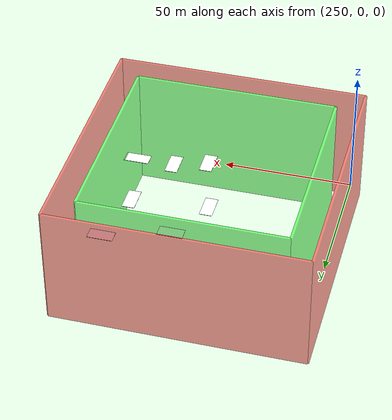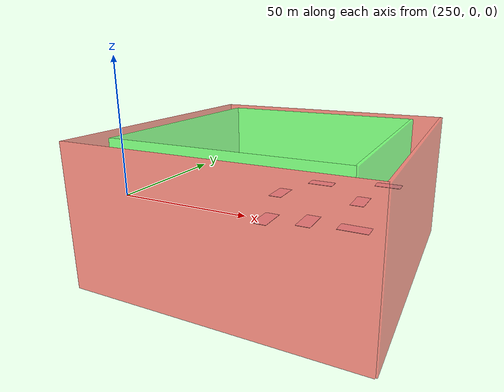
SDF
<sdf version="1.9">
 <world name="baylands">
  <physics type="ode">
   <max_step_size>0.004</max_step_size>
   <real_time_factor>1.0</real_time_factor>
   <real_time_update_rate>250</real_time_update_rate>
  </physics>
  <plugin name="gz::sim::systems::Physics" filename="gz-sim-physics-system"/>
  <plugin name="gz::sim::systems::UserCommands" filename="gz-sim-user-commands-system"/>
  <plugin name="gz::sim::systems::SceneBroadcaster" filename="gz-sim-scene-broadcaster-system"/>
  <plugin name="gz::sim::systems::Contact" filename="gz-sim-contact-system"/>
  <plugin name="gz::sim::systems::Imu" filename="gz-sim-imu-system"/>
  <plugin name="gz::sim::systems::AirPressure" filename="gz-sim-air-pressure-system"/>
  <plugin name="gz::sim::systems::ApplyLinkWrench" filename="gz-sim-apply-link-wrench-system"/>
  <plugin name="gz::sim::systems::NavSat" filename="gz-sim-navsat-system"/>
  <plugin name="gz::sim::systems::Sensors" filename="gz-sim-sensors-system">
   <render_engine>ogre2</render_engine>
  </plugin>
  <gravity>0 0 -9.8</gravity>
  <magnetic_field>6e-06 2.3e-05 -4.2e-05</magnetic_field>
  <atmosphere type="adiabatic"/>
  <scene>
   <ambient>0.8 0.5 1</ambient>
   <grid>false</grid>
   <sky><clouds>true</clouds></sky>
   <shadows>1</shadows>
  </scene>
  <light name="sunUTC" type="directional">
   <pose>0 0 500 0 -0 0</pose>
   <cast_shadows>false</cast_shadows>
   <intensity>1</intensity>
   <direction>0.001 0.625 -0.78</direction>
   <diffuse>0.904 0.904 0.904 1</diffuse>
   <specular>0.271 0.271 0.271 1</specular>
   <attenuation><range>2000</range><linear>0</linear><constant>1</constant><quadratic>0</quadratic></attenuation>
  </light>
  <spherical_coordinates>
   <surface_model>EARTH_WGS84</surface_model>
   <world_frame_orientation>ENU</world_frame_orientation>
   <latitude_deg>37.412173071650805</latitude_deg>
   <longitude_deg>-121.998878727967</longitude_deg>
   <elevation>38</elevation>
  </spherical_coordinates>
  <model name="geofense">
   <static>true</static>
   <pose>300 25 0 0 0 0</pose>
   <link name="geofense_link">
    <visual name="geofense_red_wall1">
     <pose>0 50 0 0 0 0</pose>
     <geometry><box><size>100 1 50</size></box></geometry>
     <material><diffuse>1 0 0 0.5</diffuse></material>
    </visual>
    <visual name="geofense_red_wall2">
     <pose>0 -50 0 0 0 0</pose>
     <geometry><box><size>100 1 50</size></box></geometry>
     <material><diffuse>1 0 0 0.5</diffuse></material>
    </visual>
    <visual name="geofense_red_wall3">
     <pose>50 0 0 0 0 1.5708</pose>
     <geometry><box><size>100 1 50</size></box></geometry>
     <material><diffuse>1 0 0 0.5</diffuse></material>
    </visual>
    <visual name="geofense_red_wall4">
     <pose>-50 0 0 0 0 1.5708</pose>
     <geometry><box><size>100 1 50</size></box></geometry>
     <material><diffuse>1 0 0 0.5</diffuse></material>
    </visual>
    <visual name="fa_green_wall1" relative_to="fa_red_wall1">
     <pose>0 -40 0 0 0 0</pose>
     <geometry><box><size>80 1 50</size></box></geometry>
     <material><diffuse>0 1 0 0.5</diffuse></material>
    </visual>
    <visual name="fa_green_wall2" relative_to="fa_red_wall2">
     <pose>0 40 0 0 0 0</pose>
     <geometry><box><size>80 1 50</size></box></geometry>
     <material><diffuse>0 1 0 0.5</diffuse></material>
    </visual>
    <visual name="fa_green_wall3" relative_to="fa_red_wall3">
     <pose>-40 0 0 0 0 1.5708</pose>
     <geometry><box><size>80 1 50</size></box></geometry>
     <material><diffuse>0 1 0 0.5</diffuse></material>
    </visual>
    <visual name="fa_green_wall4" relative_to="fa_red_wall4">
     <pose>40 0 0 0 0 1.5708</pose>
     <geometry><box><size>80 1 50</size></box></geometry>
     <material><diffuse>0 1 0 0.5</diffuse></material>
    </visual>
   </link>
  </model>
  <model name="zebra_1">
   <static>true</static>
   <pose>320 5 0 0 0 0</pose>
   <link name="link">
    <visual name="visual">
     <geometry><box><size>5 10 0.1</size></box></geometry>
     <material>
      <diffuse>1 1 1 1</diffuse>
      <pbr><metal><emissive_map>model://images/zebra.png</emissive_map></metal></pbr>
     </material>
    </visual>
   </link>
  </model>
  <model name="zebra_2">
   <static>true</static>
   <pose>330 30 0 0 0 0</pose>
   <link name="link">
    <visual name="visual">
     <geometry><box><size>5 10 0.1</size></box></geometry>
     <material>
      <diffuse>1 1 1 1</diffuse>
      <pbr><metal><emissive_map>fmodel://images/zebra.png</emissive_map></metal></pbr>
     </material>
    </visual>
   </link>
  </model>
  <model name="zebra_3">
   <static>true</static>
   <pose>335 5 0 0 0 -1.5708</pose>
   <link name="link">
    <visual name="visual">
     <geometry><box><size>5 10 0.1</size></box></geometry>
     <material>
      <diffuse>1 1 1 1</diffuse>
      <pbr><metal><emissive_map>model://images/zebra.png</emissive_map></metal></pbr>
     </material>
    </visual>
   </link>
  </model>
  <model name="zebra_4">
   <static>true</static>
   <pose>310 45 0 0 0 1.5708</pose>
   <link name="link">
    <visual name="visual">
     <geometry><box><size>5 10 0.1</size></box></geometry>
     <material>
      <diffuse>1 1 1 1</diffuse>
      <pbr><metal><emissive_map>model://images/zebra.png</emissive_map></metal></pbr>
     </material>
    </visual>
   </link>
  </model>
  <model name="zebra_5">
   <static>true</static>
   <pose>300 27 0 0 0 0</pose>
   <link name="link">
    <visual name="visual">
     <geometry><box><size>5 10 0.1</size></box></geometry>
     <material>
      <diffuse>1 1 1 1</diffuse>
      <pbr><metal><emissive_map>model://images/zebra.png</emissive_map></metal></pbr>
     </material>
    </visual>
   </link>
  </model>
  <model name="zebra_6">
   <static>true</static>
   <pose>335 53 0 0 0 1.5708</pose>
   <link name="link">
    <visual name="visual">
     <geometry><box><size>5 10 0.1</size></box></geometry>
     <material>
      <diffuse>1 1 1 1</diffuse>
      <pbr><metal><emissive_map>model://images/zebra.png</emissive_map></metal></pbr>
     </material>
    </visual>
   </link>
  </model>
  <model name="zebra_7">
   <static>true</static>
   <pose>307 1 0 0 0 0</pose>
   <link name="link">
    <visual name="visual">
     <geometry><box><size>5 10 0.1</size></box></geometry>
     <material>
      <diffuse>1 1 1 1</diffuse>
      <pbr><metal><emissive_map>model://images/zebra.png</emissive_map></metal></pbr>
     </material>
    </visual>
   </link>
  </model>
  <model name="aruco_marker">
   <static>true</static>
   <pose>275 10 0 0 0 0</pose>
   <link name="link">
    <visual name="visual">
     <geometry><plane><normal>0 0 1</normal><size>0.15 0.15</size></plane></geometry>
     <material>
      <diffuse>1 1 1 1</diffuse>
      <specular>0.4 0.4 0.4 1</specular>
      <pbr><metal><emissive_map>model://images/5x5_1000-800.png</emissive_map></metal></pbr>
     </material>
    </visual>
   </link>
  </model>
 </world>
</sdf>
